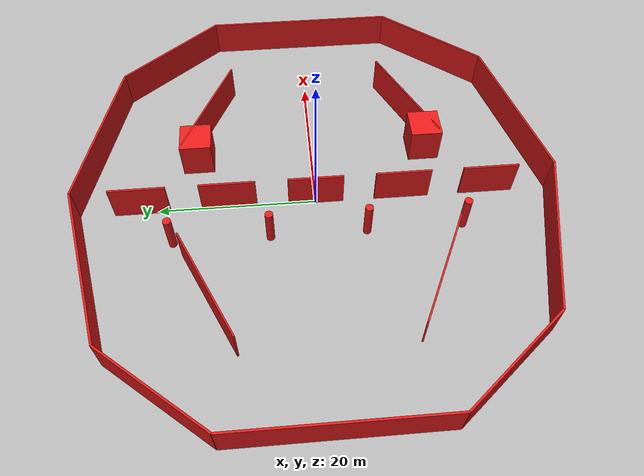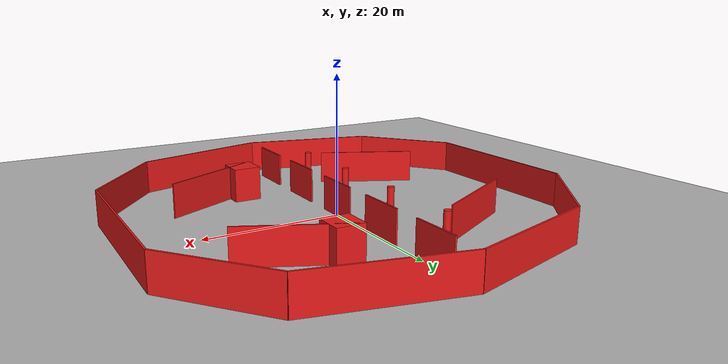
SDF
<?xml version="1.0" ?>
<sdf version='1.7'>
  <world name='default'>
    <light name='sun' type='directional'>
      <cast_shadows>1</cast_shadows>
      <pose>0 0 10 0 -0 0</pose>
      <diffuse>0.8 0.8 0.8 1</diffuse>
      <specular>0.2 0.2 0.2 1</specular>
      <attenuation>
        <range>1000</range>
        <constant>0.9</constant>
        <linear>0.01</linear>
        <quadratic>0.001</quadratic>
      </attenuation>
      <direction>-0.5 0.1 -0.9</direction>
      <spot>
        <inner_angle>0</inner_angle>
        <outer_angle>0</outer_angle>
        <falloff>0</falloff>
      </spot>
    </light>

    <model name='ground_plane'>
      <static>1</static>
      <link name='link'>
        <collision name='collision'>
          <geometry>
            <plane>
              <normal>0 0 1</normal>
              <size>500 500</size>
            </plane>
          </geometry>
          <surface>
            <contact>
              <collide_bitmask>65535</collide_bitmask>
              <ode/>
            </contact>
            <friction>
              <ode>
                <mu>100</mu>
                <mu2>50</mu2>
              </ode>
              <torsional>
                <ode/>
              </torsional>
            </friction>
            <bounce/>
          </surface>
          <max_contacts>10</max_contacts>
        </collision>
        <visual name='visual'>
          <cast_shadows>0</cast_shadows>
          <geometry>
            <plane>
              <normal>0 0 1</normal>
              <size>500 500</size>
            </plane>
          </geometry>
          <material>
            <ambient>0.7 0.7 0.7 1</ambient>
            <diffuse>0.7 0.7 0.7 1</diffuse>
            <specular>0.2 0.2 0.2 1</specular>
            <emissive>0 0 0 1</emissive>
            <pbr>
              <metal>
                <albedo>0.7 0.7 0.7 1</albedo>
                <roughness>0.4</roughness>
                <metalness>0</metalness>
              </metal>
            </pbr>
          </material>
        </visual>
        <self_collide>0</self_collide>
        <enable_wind>0</enable_wind>
        <kinematic>0</kinematic>
      </link>
    </model>

    <gravity>0 0 -9.8</gravity>
    <magnetic_field>6e-06 2.3e-05 -4.2e-05</magnetic_field>
    <atmosphere type='adiabatic'/>
    <physics type='ode'>
      <max_step_size>0.004</max_step_size>
      <real_time_factor>1</real_time_factor>
      <real_time_update_rate>250</real_time_update_rate>
    </physics>

    <plugin filename="ignition-gazebo-physics-system" name="gz::sim::systems::Physics"/>
    <plugin filename="ignition-gazebo-sensors-system" name="gz::sim::systems::Sensors">
      <render_engine>ogre2</render_engine>
    </plugin>
    <plugin filename="ignition-gazebo-imu-system" name="gz::sim::systems::Imu"/>
    <plugin filename="ignition-gazebo-user-commands-system" name="gz::sim::systems::UserCommands"/>
    <plugin filename="ignition-gazebo-scene-broadcaster-system" name="gz::sim::systems::SceneBroadcaster"/>

    <scene>
      <ambient>0.4 0.4 0.4 1</ambient>
      <background>0.7 0.7 0.7 1</background>
      <shadows>1</shadows>
    </scene>
    <wind/>
    <spherical_coordinates>
      <surface_model>EARTH_WGS84</surface_model>
      <latitude_deg>0</latitude_deg>
      <longitude_deg>0</longitude_deg>
      <elevation>0</elevation>
      <heading_deg>0</heading_deg>
    </spherical_coordinates>

    <model name='arena_layout'>
      <static>1</static>
      <pose>0 0 0 0 0 0</pose>

      <link name='outer_01'>
        <pose>10 27.5 2.5 0 -0 -0.244978663</pose>
        <collision name='collision'><geometry><box><size>20.6155 0.25 5.0</size></box></geometry></collision>
        <visual name='visual'><geometry><box><size>20.6155 0.25 5.0</size></box></geometry><material><ambient>0.9 0.1 0.1 1</ambient><diffuse>0.9 0.1 0.1 1</diffuse></material></visual>
      </link>
      <link name='outer_02'>
        <pose>25 18.75 2.5 0 -0 -0.896055385</pose>
        <collision name='collision'><geometry><box><size>16.0078 0.25 5.0</size></box></geometry></collision>
        <visual name='visual'><geometry><box><size>16.0078 0.25 5.0</size></box></geometry><material><ambient>0.9 0.1 0.1 1</ambient><diffuse>0.9 0.1 0.1 1</diffuse></material></visual>
      </link>
      <link name='outer_03'>
        <pose>30 0 2.5 0 -0 -1.570796327</pose>
        <collision name='collision'><geometry><box><size>25.0 0.25 5.0</size></box></geometry></collision>
        <visual name='visual'><geometry><box><size>25.0 0.25 5.0</size></box></geometry><material><ambient>0.9 0.1 0.1 1</ambient><diffuse>0.9 0.1 0.1 1</diffuse></material></visual>
      </link>
      <link name='outer_04'>
        <pose>25 -18.75 2.5 0 -0 -2.245537269</pose>
        <collision name='collision'><geometry><box><size>16.0078 0.25 5.0</size></box></geometry></collision>
        <visual name='visual'><geometry><box><size>16.0078 0.25 5.0</size></box></geometry><material><ambient>0.9 0.1 0.1 1</ambient><diffuse>0.9 0.1 0.1 1</diffuse></material></visual>
      </link>
      <link name='outer_05'>
        <pose>10 -27.5 2.5 0 -0 -2.89661399</pose>
        <collision name='collision'><geometry><box><size>20.6155 0.25 5.0</size></box></geometry></collision>
        <visual name='visual'><geometry><box><size>20.6155 0.25 5.0</size></box></geometry><material><ambient>0.9 0.1 0.1 1</ambient><diffuse>0.9 0.1 0.1 1</diffuse></material></visual>
      </link>
      <link name='outer_06'>
        <pose>-10 -27.5 2.5 0 -0 2.89661399</pose>
        <collision name='collision'><geometry><box><size>20.6155 0.25 5.0</size></box></geometry></collision>
        <visual name='visual'><geometry><box><size>20.6155 0.25 5.0</size></box></geometry><material><ambient>0.9 0.1 0.1 1</ambient><diffuse>0.9 0.1 0.1 1</diffuse></material></visual>
      </link>
      <link name='outer_07'>
        <pose>-25 -18.75 2.5 0 -0 2.245537269</pose>
        <collision name='collision'><geometry><box><size>16.0078 0.25 5.0</size></box></geometry></collision>
        <visual name='visual'><geometry><box><size>16.0078 0.25 5.0</size></box></geometry><material><ambient>0.9 0.1 0.1 1</ambient><diffuse>0.9 0.1 0.1 1</diffuse></material></visual>
      </link>
      <link name='outer_08'>
        <pose>-30 0 2.5 0 -0 1.570796327</pose>
        <collision name='collision'><geometry><box><size>25.0 0.25 5.0</size></box></geometry></collision>
        <visual name='visual'><geometry><box><size>25.0 0.25 5.0</size></box></geometry><material><ambient>0.9 0.1 0.1 1</ambient><diffuse>0.9 0.1 0.1 1</diffuse></material></visual>
      </link>
      <link name='outer_09'>
        <pose>-25 18.75 2.5 0 -0 0.896055385</pose>
        <collision name='collision'><geometry><box><size>16.0078 0.25 5.0</size></box></geometry></collision>
        <visual name='visual'><geometry><box><size>16.0078 0.25 5.0</size></box></geometry><material><ambient>0.9 0.1 0.1 1</ambient><diffuse>0.9 0.1 0.1 1</diffuse></material></visual>
      </link>
      <link name='outer_10'>
        <pose>-10 27.5 2.5 0 -0 0.244978663</pose>
        <collision name='collision'><geometry><box><size>20.6155 0.25 5.0</size></box></geometry></collision>
        <visual name='visual'><geometry><box><size>20.6155 0.25 5.0</size></box></geometry><material><ambient>0.9 0.1 0.1 1</ambient><diffuse>0.9 0.1 0.1 1</diffuse></material></visual>
      </link>

      <link name='central_01'>
        <pose>0 22.0 2.5 0 -0 1.570796327</pose>
        <collision name='collision'><geometry><box><size>7.0 0.25 5.0</size></box></geometry></collision>
        <visual name='visual'><geometry><box><size>7.0 0.25 5.0</size></box></geometry><material><ambient>0.9 0.1 0.1 1</ambient><diffuse>0.9 0.1 0.1 1</diffuse></material></visual>
      </link>
      <link name='central_02'>
        <pose>0 11.0 2.5 0 -0 1.570796327</pose>
        <collision name='collision'><geometry><box><size>7.0 0.25 5.0</size></box></geometry></collision>
        <visual name='visual'><geometry><box><size>7.0 0.25 5.0</size></box></geometry><material><ambient>0.9 0.1 0.1 1</ambient><diffuse>0.9 0.1 0.1 1</diffuse></material></visual>
      </link>
      <link name='central_03'>
        <pose>0 0 2.5 0 -0 1.570796327</pose>
        <collision name='collision'><geometry><box><size>7.0 0.25 5.0</size></box></geometry></collision>
        <visual name='visual'><geometry><box><size>7.0 0.25 5.0</size></box></geometry><material><ambient>0.9 0.1 0.1 1</ambient><diffuse>0.9 0.1 0.1 1</diffuse></material></visual>
      </link>
      <link name='central_04'>
        <pose>0 -11.0 2.5 0 -0 1.570796327</pose>
        <collision name='collision'><geometry><box><size>7.0 0.25 5.0</size></box></geometry></collision>
        <visual name='visual'><geometry><box><size>7.0 0.25 5.0</size></box></geometry><material><ambient>0.9 0.1 0.1 1</ambient><diffuse>0.9 0.1 0.1 1</diffuse></material></visual>
      </link>
      <link name='central_05'>
        <pose>0 -22.0 2.5 0 -0 1.570796327</pose>
        <collision name='collision'><geometry><box><size>7.0 0.25 5.0</size></box></geometry></collision>
        <visual name='visual'><geometry><box><size>7.0 0.25 5.0</size></box></geometry><material><ambient>0.9 0.1 0.1 1</ambient><diffuse>0.9 0.1 0.1 1</diffuse></material></visual>
      </link>

      <link name='left_inset_upper'>
        <pose>-13.5 13.5 2.5 0 -0 0.45</pose>
        <collision name='collision'><geometry><box><size>15.0 0.2 5.0</size></box></geometry></collision>
        <visual name='visual'><geometry><box><size>15.0 0.2 5.0</size></box></geometry><material><ambient>0.9 0.1 0.1 1</ambient><diffuse>0.9 0.1 0.1 1</diffuse></material></visual>
      </link>
      <link name='left_inset_lower'>
        <pose>-13.5 -13.5 2.5 0 -0 -0.45</pose>
        <collision name='collision'><geometry><box><size>15.0 0.2 5.0</size></box></geometry></collision>
        <visual name='visual'><geometry><box><size>15.0 0.2 5.0</size></box></geometry><material><ambient>0.9 0.1 0.1 1</ambient><diffuse>0.9 0.1 0.1 1</diffuse></material></visual>
      </link>
      <link name='right_inset_upper'>
        <pose>13.5 13.5 2.5 0 -0 -0.45</pose>
        <collision name='collision'><geometry><box><size>15.0 0.2 5.0</size></box></geometry></collision>
        <visual name='visual'><geometry><box><size>15.0 0.2 5.0</size></box></geometry><material><ambient>0.9 0.1 0.1 1</ambient><diffuse>0.9 0.1 0.1 1</diffuse></material></visual>
      </link>
      <link name='right_inset_lower'>
        <pose>13.5 -13.5 2.5 0 -0 0.45</pose>
        <collision name='collision'><geometry><box><size>15.0 0.2 5.0</size></box></geometry></collision>
        <visual name='visual'><geometry><box><size>15.0 0.2 5.0</size></box></geometry><material><ambient>0.9 0.1 0.1 1</ambient><diffuse>0.9 0.1 0.1 1</diffuse></material></visual>
      </link>

      <link name='pillar_01'>
        <pose>-5.0 18.0 2.5 0 -0 0</pose>
        <collision name='collision'><geometry><cylinder><radius>0.5</radius><length>5.0</length></cylinder></geometry></collision>
        <visual name='visual'><geometry><cylinder><radius>0.5</radius><length>5.0</length></cylinder></geometry><material><ambient>0.9 0.1 0.1 1</ambient><diffuse>0.9 0.1 0.1 1</diffuse></material></visual>
      </link>
      <link name='pillar_02'>
        <pose>-5.0 6.0 2.5 0 -0 0</pose>
        <collision name='collision'><geometry><cylinder><radius>0.5</radius><length>5.0</length></cylinder></geometry></collision>
        <visual name='visual'><geometry><cylinder><radius>0.5</radius><length>5.0</length></cylinder></geometry><material><ambient>0.9 0.1 0.1 1</ambient><diffuse>0.9 0.1 0.1 1</diffuse></material></visual>
      </link>
      <link name='pillar_03'>
        <pose>-5.0 -6.0 2.5 0 -0 0</pose>
        <collision name='collision'><geometry><cylinder><radius>0.5</radius><length>5.0</length></cylinder></geometry></collision>
        <visual name='visual'><geometry><cylinder><radius>0.5</radius><length>5.0</length></cylinder></geometry><material><ambient>0.9 0.1 0.1 1</ambient><diffuse>0.9 0.1 0.1 1</diffuse></material></visual>
      </link>
      <link name='pillar_04'>
        <pose>-5.0 -18.0 2.5 0 -0 0</pose>
        <collision name='collision'><geometry><cylinder><radius>0.5</radius><length>5.0</length></cylinder></geometry></collision>
        <visual name='visual'><geometry><cylinder><radius>0.5</radius><length>5.0</length></cylinder></geometry><material><ambient>0.9 0.1 0.1 1</ambient><diffuse>0.9 0.1 0.1 1</diffuse></material></visual>
      </link>

      <link name='block_01'>
        <pose>8.0 15.0 2.5 0 -0 0</pose>
        <collision name='collision'><geometry><box><size>4.0 4.0 5.0</size></box></geometry></collision>
        <visual name='visual'><geometry><box><size>4.0 4.0 5.0</size></box></geometry><material><ambient>0.9 0.1 0.1 1</ambient><diffuse>0.9 0.1 0.1 1</diffuse></material></visual>
      </link>
      <link name='block_02'>
        <pose>8.0 -15.0 2.5 0 -0 0</pose>
        <collision name='collision'><geometry><box><size>4.0 4.0 5.0</size></box></geometry></collision>
        <visual name='visual'><geometry><box><size>4.0 4.0 5.0</size></box></geometry><material><ambient>0.9 0.1 0.1 1</ambient><diffuse>0.9 0.1 0.1 1</diffuse></material></visual>
      </link>
    </model>

    <gui fullscreen='0'>
      <camera name='user_camera'>
        <pose>-45.0 20.0 170.0 0 1.2 -0.8</pose>
        <view_controller>orbit</view_controller>
        <projection_type>perspective</projection_type>
      </camera>
    </gui>
  </world>
</sdf>
